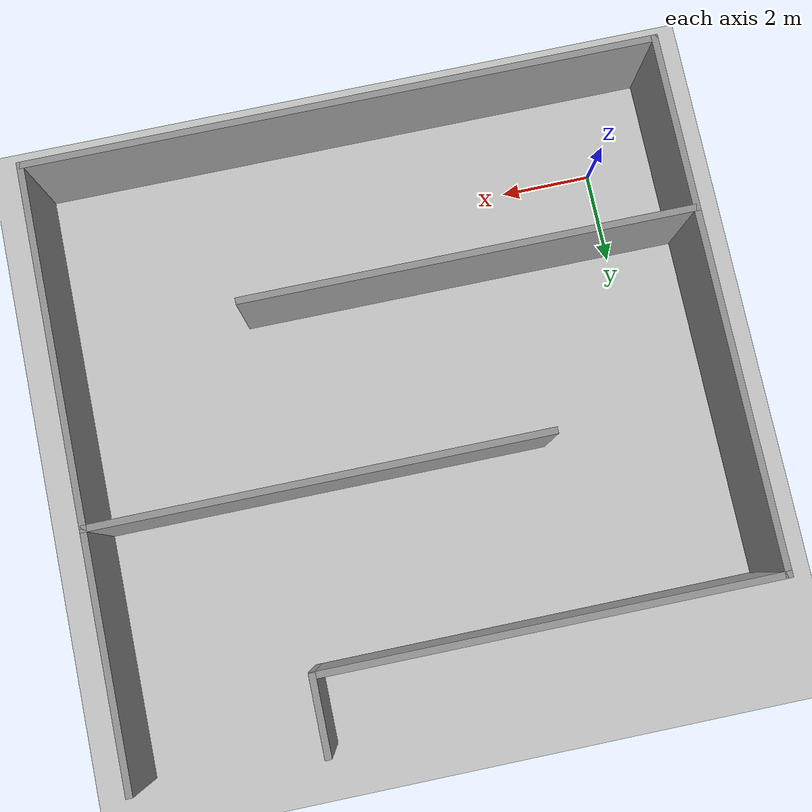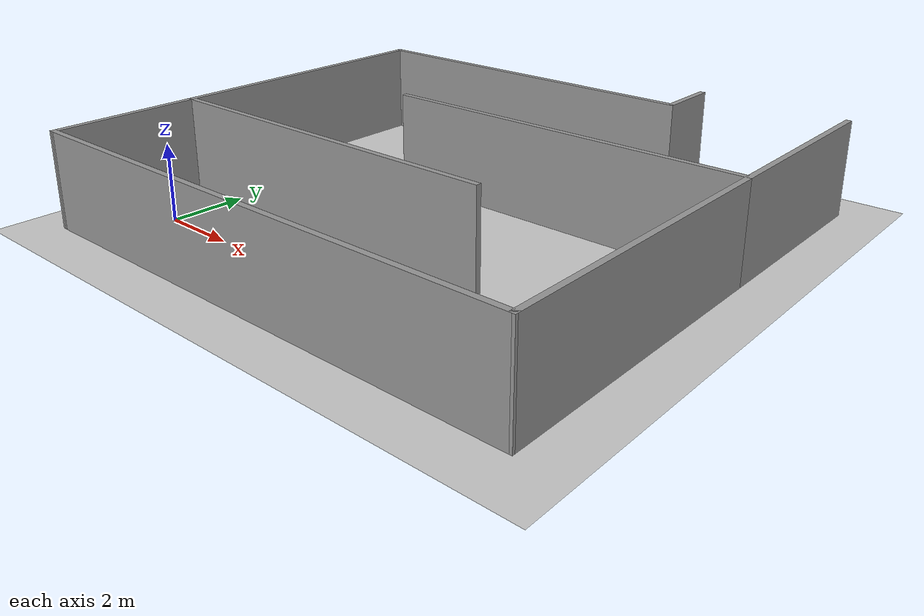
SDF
<sdf version="1.6">
 <world name="default">
  <light name="sun" type="directional">
   <pose>0 0 10 0 -0 0</pose>
   <diffuse>0.8 0.8 0.8 1</diffuse>
   <specular>0.2 0.2 0.2 1</specular>
   <attenuation>
    <range>1000</range>
    <constant>0.9</constant>
    <linear>0.01</linear>
    <quadratic>0.001</quadratic>
   </attenuation>
   <direction>-0.5 0.1 -0.9</direction>
  </light>
  <model name="ground_plane">
   <static>1</static>
   <link name="link">
    <collision name="collision">
     <geometry><plane><normal>0 0 1</normal><size>100 100</size></plane></geometry>
     <surface>
      <contact><collide_bitmask>65535</collide_bitmask></contact>
      <friction><ode><mu>100</mu><mu2>50</mu2></ode></friction>
     </surface>
    </collision>
    <visual name="visual">
     <cast_shadows>0</cast_shadows>
     <geometry><plane><normal>0 0 1</normal><size>100 100</size></plane></geometry>
     <material>
      <script><uri>file://media/materials/scripts/gazebo.material</uri><name>Gazebo/Grey</name></script>
     </material>
    </visual>
   </link>
  </model>
  <gravity>0 0 -9.8</gravity>
  <magnetic_field>6e-06 2.3e-05 -4.2e-05</magnetic_field>
  <atmosphere type="adiabatic"/>
  <physics name="default_physics" default="0" type="ode">
   <max_step_size>0.001</max_step_size>
   <real_time_factor>1</real_time_factor>
   <real_time_update_rate>1000</real_time_update_rate>
  </physics>
  <scene><ambient>0.4 0.4 0.4 1</ambient><background>0.7 0.7 0.7 1</background><shadows>1</shadows></scene>
  <audio><device>default</device></audio>
  <spherical_coordinates>
   <surface_model>EARTH_WGS84</surface_model>
   <latitude_deg>0</latitude_deg>
   <longitude_deg>0</longitude_deg>
   <elevation>0</elevation>
   <heading_deg>0</heading_deg>
  </spherical_coordinates>
  <model name="S_curve">
   <pose>5.36458 4.63656 0 0 -0 0</pose>
   <link name="Wall_0">
    <collision name="Wall_0_Collision">
     <geometry><box><size>14 0.15 2.5</size></box></geometry>
     <pose>0 0 1.25 0 -0 0</pose>
    </collision>
    <visual name="Wall_0_Visual">
     <pose>0 0 1.25 0 -0 0</pose>
     <geometry><box><size>14 0.15 2.5</size></box></geometry>
     <material>
      <script><uri>file://media/materials/scripts/gazebo.material</uri><name>Gazebo/Grey</name></script>
      <ambient>1 1 1 1</ambient>
     </material>
     <meta><layer>0</layer></meta>
    </visual>
    <pose>0 -6.63971 0 0 -0 0.001478</pose>
   </link>
   <link name="Wall_13">
    <collision name="Wall_13_Collision">
     <geometry><box><size>8 0.15 2.5</size></box></geometry>
     <pose>0 0 1.25 0 -0 0</pose>
    </collision>
    <visual name="Wall_13_Visual">
     <pose>0 0 1.25 0 -0 0</pose>
     <geometry><box><size>8 0.15 2.5</size></box></geometry>
     <material>
      <script><uri>file://media/materials/scripts/gazebo.material</uri><name>Gazebo/Grey</name></script>
      <ambient>1 1 1 1</ambient>
     </material>
     <meta><layer>0</layer></meta>
    </visual>
    <pose>-6.92499 1.12505 0 0 -0 1.5708</pose>
   </link>
   <link name="Wall_15">
    <collision name="Wall_15_Collision">
     <geometry><box><size>10 0.15 2.5</size></box></geometry>
     <pose>0 0 1.25 0 -0 0</pose>
    </collision>
    <visual name="Wall_15_Visual">
     <pose>0 0 1.25 0 -0 0</pose>
     <geometry><box><size>10 0.15 2.5</size></box></geometry>
     <material>
      <script><uri>file://media/materials/scripts/gazebo.material</uri><name>Gazebo/Grey</name></script>
      <ambient>1 1 1 1</ambient>
     </material>
     <meta><layer>0</layer></meta>
    </visual>
    <pose>-1.99999 5.05006 0 0 -0 0</pose>
   </link>
   <link name="Wall_17">
    <collision name="Wall_17_Collision">
     <geometry><box><size>5.5 0.15 2.5</size></box></geometry>
     <pose>0 0 1.25 0 -0 0</pose>
    </collision>
    <visual name="Wall_17_Visual">
     <pose>0 0 1.25 0 -0 0</pose>
     <geometry><box><size>5.5 0.15 2.5</size></box></geometry>
     <material>
      <script><uri>file://media/materials/scripts/gazebo.material</uri><name>Gazebo/Grey</name></script>
      <ambient>1 1 1 1</ambient>
     </material>
     <meta><layer>0</layer></meta>
    </visual>
    <pose>6.92499 3.89553 0 0 -0 1.5708</pose>
   </link>
   <link name="Wall_2">
    <collision name="Wall_2_Collision">
     <geometry><box><size>4 0.15 2.5</size></box></geometry>
     <pose>0 0 1.25 0 -0 0</pose>
    </collision>
    <visual name="Wall_2_Visual">
     <pose>0 0 1.25 0 -0 0</pose>
     <geometry><box><size>4 0.15 2.5</size></box></geometry>
     <material>
      <script><uri>file://media/materials/scripts/gazebo.material</uri><name>Gazebo/Grey</name></script>
      <ambient>1 1 1 1</ambient>
     </material>
     <meta><layer>0</layer></meta>
    </visual>
    <pose>-6.92499 -4.72494 0 0 -0 1.5708</pose>
   </link>
   <link name="Wall_20">
    <collision name="Wall_20_Collision">
     <geometry><box><size>1.75 0.15 2.5</size></box></geometry>
     <pose>0 0 1.25 0 -0 0</pose>
    </collision>
    <visual name="Wall_20_Visual">
     <pose>0 0 1.25 0 -0 0</pose>
     <geometry><box><size>1.75 0.15 2.5</size></box></geometry>
     <material>
      <script><uri>file://media/materials/scripts/gazebo.material</uri><name>Gazebo/Grey</name></script>
      <ambient>1 1 1 1</ambient>
     </material>
     <meta><layer>0</layer></meta>
    </visual>
    <pose>2.92501 5.85006 0 0 -0 1.5708</pose>
   </link>
   <link name="Wall_3">
    <collision name="Wall_3_Collision">
     <geometry><box><size>10 0.15 2.5</size></box></geometry>
     <pose>0 0 1.25 0 -0 0</pose>
    </collision>
    <visual name="Wall_3_Visual">
     <pose>0 0 1.25 0 -0 0</pose>
     <geometry><box><size>10 0.15 2.5</size></box></geometry>
     <material>
      <script><uri>file://media/materials/scripts/gazebo.material</uri><name>Gazebo/Grey</name></script>
      <ambient>1 1 1 1</ambient>
     </material>
     <meta><layer>0</layer></meta>
    </visual>
    <pose>-1.99999 -2.79995 0 0 -0 0</pose>
   </link>
   <link name="Wall_8">
    <collision name="Wall_8_Collision">
     <geometry><box><size>8 0.15 2.5</size></box></geometry>
     <pose>0 0 1.25 0 -0 0</pose>
    </collision>
    <visual name="Wall_8_Visual">
     <pose>0 0 1.25 0 -0 0</pose>
     <geometry><box><size>8 0.15 2.5</size></box></geometry>
     <material>
      <script><uri>file://media/materials/scripts/gazebo.material</uri><name>Gazebo/Grey</name></script>
      <ambient>1 1 1 1</ambient>
     </material>
     <meta><layer>0</layer></meta>
    </visual>
    <pose>6.92499 -2.70447 0 0 -0 1.5708</pose>
   </link>
   <link name="Wall_9">
    <collision name="Wall_9_Collision">
     <geometry><box><size>10 0.15 2.5</size></box></geometry>
     <pose>0 0 1.25 0 -0 0</pose>
    </collision>
    <visual name="Wall_9_Visual">
     <pose>0 0 1.25 0 -0 0</pose>
     <geometry><box><size>10 0.15 2.5</size></box></geometry>
     <material>
      <script><uri>file://media/materials/scripts/gazebo.material</uri><name>Gazebo/Grey</name></script>
      <ambient>1 1 1 1</ambient>
     </material>
     <meta><layer>0</layer></meta>
    </visual>
    <pose>1.99999 1.22053 0 0 -0 3.14159</pose>
   </link>
   <static>1</static>
  </model>
 </world>
</sdf>
